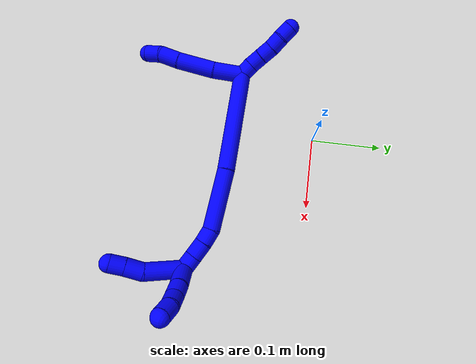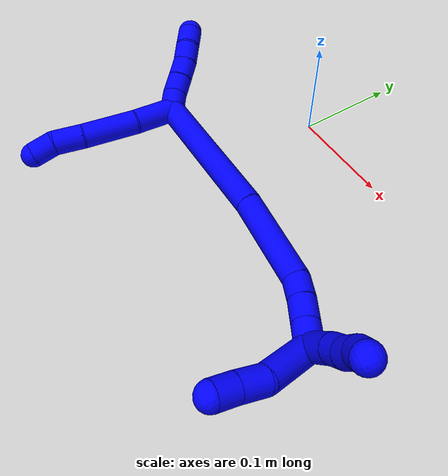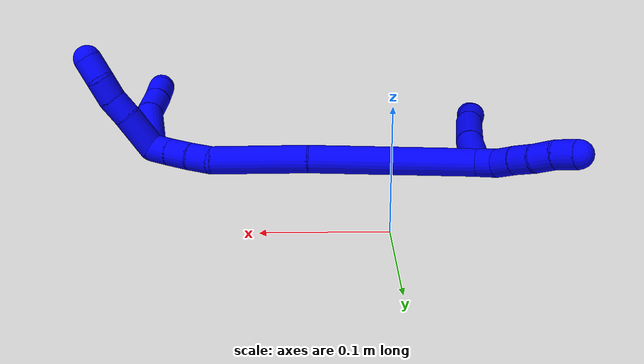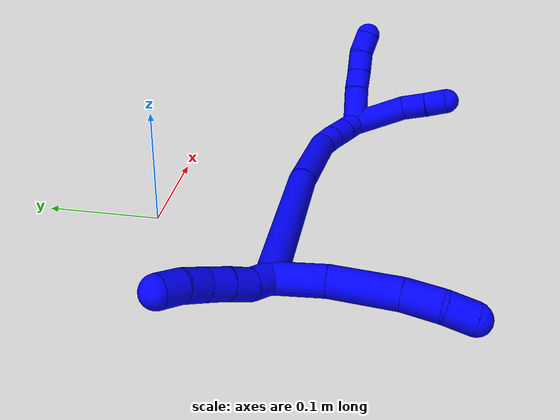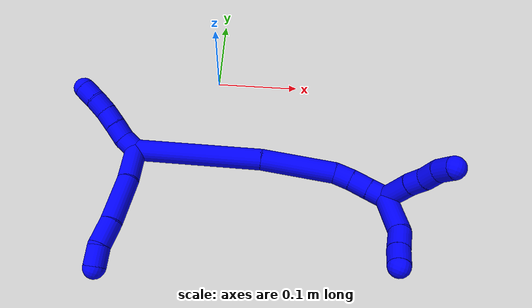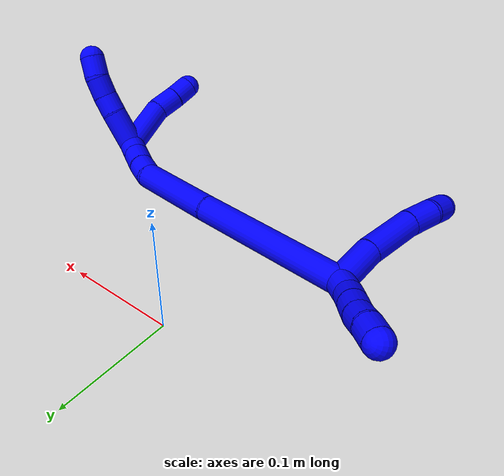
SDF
<sdf version="1.7">
 <world name="default">
  <model name="1">
   <static>0</static>
   <link name="1">
    <collision name="collision-cylinder-e_1_2_8">
     <pose>0.00542 0.011683 0.017354 -0.592518 0.2535 -0.077757</pose>
     <geometry><cylinder><radius>0.0125</radius><length>0.043222</length></cylinder></geometry>
     <surface>
      <friction><ode><mu>1.16</mu><mu2>1.16</mu2><slip1>0</slip1><slip2>0</slip2></ode></friction>
      <contact><ode><kp>1e+06</kp><kd>1</kd><max_vel>0</max_vel><min_depth>0.001</min_depth></ode></contact>
     </surface>
    </collision>
    <visual name="visual-cylinder-e_1_2_8">
     <pose>0.00542 0.011683 0.017354 -0.592518 0.2535 -0.077757</pose>
     <geometry><cylinder><radius>0.0125</radius><length>0.043222</length></cylinder></geometry>
     <material><ambient>0 0 1 1</ambient></material>
    </visual>
    <collision name="collision-cylinder-e_2_8_9">
     <pose>0.01445 0.036912 0.058126 -0.524424 0.132656 -0.035652</pose>
     <geometry><cylinder><radius>0.0125</radius><length>0.054587</length></cylinder></geometry>
     <surface>
      <friction><ode><mu>1.16</mu><mu2>1.16</mu2><slip1>0</slip1><slip2>0</slip2></ode></friction>
      <contact><ode><kp>1e+06</kp><kd>1</kd><max_vel>0</max_vel><min_depth>0.001</min_depth></ode></contact>
     </surface>
    </collision>
    <visual name="visual-cylinder-e_2_8_9">
     <pose>0.01445 0.036912 0.058126 -0.524424 0.132656 -0.035652</pose>
     <geometry><cylinder><radius>0.0125</radius><length>0.054587</length></cylinder></geometry>
     <material><ambient>0 0 1 1</ambient></material>
    </visual>
    <collision name="collision-cylinder-e_3_9_10">
     <pose>0.018479 0.05688 0.094693 -0.454361 0.028614 -0.006615</pose>
     <geometry><cylinder><radius>0.0125</radius><length>0.029278</length></cylinder></geometry>
     <surface>
      <friction><ode><mu>1.16</mu><mu2>1.16</mu2><slip1>0</slip1><slip2>0</slip2></ode></friction>
      <contact><ode><kp>1e+06</kp><kd>1</kd><max_vel>0</max_vel><min_depth>0.001</min_depth></ode></contact>
     </surface>
    </collision>
    <visual name="visual-cylinder-e_3_9_10">
     <pose>0.018479 0.05688 0.094693 -0.454361 0.028614 -0.006615</pose>
     <geometry><cylinder><radius>0.0125</radius><length>0.029278</length></cylinder></geometry>
     <material><ambient>0 0 1 1</ambient></material>
    </visual>
    <collision name="collision-cylinder-e_4_10_6">
     <pose>0.021539 0.065818 0.118701 -0.227586 0.23269 -0.026713</pose>
     <geometry><cylinder><radius>0.0125</radius><length>0.022913</length></cylinder></geometry>
     <surface>
      <friction><ode><mu>1.16</mu><mu2>1.16</mu2><slip1>0</slip1><slip2>0</slip2></ode></friction>
      <contact><ode><kp>1e+06</kp><kd>1</kd><max_vel>0</max_vel><min_depth>0.001</min_depth></ode></contact>
     </surface>
    </collision>
    <visual name="visual-cylinder-e_4_10_6">
     <pose>0.021539 0.065818 0.118701 -0.227586 0.23269 -0.026713</pose>
     <geometry><cylinder><radius>0.0125</radius><length>0.022913</length></cylinder></geometry>
     <material><ambient>0 0 1 1</ambient></material>
    </visual>
    <collision name="collision-cylinder-e_1_2_11">
     <pose>-0.009314 -0.000882 -0.003532 2.89701 -1.19816 -2.7854</pose>
     <geometry><cylinder><radius>0.0125</radius><length>0.02</length></cylinder></geometry>
     <surface>
      <friction><ode><mu>1.16</mu><mu2>1.16</mu2><slip1>0</slip1><slip2>0</slip2></ode></friction>
      <contact><ode><kp>1e+06</kp><kd>1</kd><max_vel>0</max_vel><min_depth>0.001</min_depth></ode></contact>
     </surface>
    </collision>
    <visual name="visual-cylinder-e_1_2_11">
     <pose>-0.009314 -0.000882 -0.003532 2.89701 -1.19816 -2.7854</pose>
     <geometry><cylinder><radius>0.0125</radius><length>0.02</length></cylinder></geometry>
     <material><ambient>0 0 1 1</ambient></material>
    </visual>
    <collision name="collision-cylinder-e_2_11_12">
     <pose>-0.0268 -0.001419 -0.012817 -3.0818 -0.956631 3.02636</pose>
     <geometry><cylinder><radius>0.0125</radius><length>0.02</length></cylinder></geometry>
     <surface>
      <friction><ode><mu>1.16</mu><mu2>1.16</mu2><slip1>0</slip1><slip2>0</slip2></ode></friction>
      <contact><ode><kp>1e+06</kp><kd>1</kd><max_vel>0</max_vel><min_depth>0.001</min_depth></ode></contact>
     </surface>
    </collision>
    <visual name="visual-cylinder-e_2_11_12">
     <pose>-0.0268 -0.001419 -0.012817 -3.0818 -0.956631 3.02636</pose>
     <geometry><cylinder><radius>0.0125</radius><length>0.02</length></cylinder></geometry>
     <material><ambient>0 0 1 1</ambient></material>
    </visual>
    <collision name="collision-cylinder-e_3_12_13">
     <pose>-0.043356 -0.001195 -0.02402 3.11957 -0.994171 -3.101</pose>
     <geometry><cylinder><radius>0.0125</radius><length>0.02</length></cylinder></geometry>
     <surface>
      <friction><ode><mu>1.16</mu><mu2>1.16</mu2><slip1>0</slip1><slip2>0</slip2></ode></friction>
      <contact><ode><kp>1e+06</kp><kd>1</kd><max_vel>0</max_vel><min_depth>0.001</min_depth></ode></contact>
     </surface>
    </collision>
    <visual name="visual-cylinder-e_3_12_13">
     <pose>-0.043356 -0.001195 -0.02402 3.11957 -0.994171 -3.101</pose>
     <geometry><cylinder><radius>0.0125</radius><length>0.02</length></cylinder></geometry>
     <material><ambient>0 0 1 1</ambient></material>
    </visual>
    <collision name="collision-cylinder-e_4_13_14">
     <pose>-0.060546 -0.000452 -0.034128 -2.95847 -1.07742 2.83673</pose>
     <geometry><cylinder><radius>0.0125</radius><length>0.02</length></cylinder></geometry>
     <surface>
      <friction><ode><mu>1.16</mu><mu2>1.16</mu2><slip1>0</slip1><slip2>0</slip2></ode></friction>
      <contact><ode><kp>1e+06</kp><kd>1</kd><max_vel>0</max_vel><min_depth>0.001</min_depth></ode></contact>
     </surface>
    </collision>
    <visual name="visual-cylinder-e_4_13_14">
     <pose>-0.060546 -0.000452 -0.034128 -2.95847 -1.07742 2.83673</pose>
     <geometry><cylinder><radius>0.0125</radius><length>0.02</length></cylinder></geometry>
     <material><ambient>0 0 1 1</ambient></material>
    </visual>
    <collision name="collision-cylinder-e_5_14_5">
     <pose>-0.078529 -0.000149 -0.042722 3.00044 -1.16183 -2.92705</pose>
     <geometry><cylinder><radius>0.0125</radius><length>0.02</length></cylinder></geometry>
     <surface>
      <friction><ode><mu>1.16</mu><mu2>1.16</mu2><slip1>0</slip1><slip2>0</slip2></ode></friction>
      <contact><ode><kp>1e+06</kp><kd>1</kd><max_vel>0</max_vel><min_depth>0.001</min_depth></ode></contact>
     </surface>
    </collision>
    <visual name="visual-cylinder-e_5_14_5">
     <pose>-0.078529 -0.000149 -0.042722 3.00044 -1.16183 -2.92705</pose>
     <geometry><cylinder><radius>0.0125</radius><length>0.02</length></cylinder></geometry>
     <material><ambient>0 0 1 1</ambient></material>
    </visual>
    <collision name="collision-cylinder-e_1_2_15">
     <pose>0.07142 -0.000656 -0.02118 3.11065 1.28236 3.10014</pose>
     <geometry><cylinder><radius>0.0125</radius><length>0.148994</length></cylinder></geometry>
     <surface>
      <friction><ode><mu>1.16</mu><mu2>1.16</mu2><slip1>0</slip1><slip2>0</slip2></ode></friction>
      <contact><ode><kp>1e+06</kp><kd>1</kd><max_vel>0</max_vel><min_depth>0.001</min_depth></ode></contact>
     </surface>
    </collision>
    <visual name="visual-cylinder-e_1_2_15">
     <pose>0.07142 -0.000656 -0.02118 3.11065 1.28236 3.10014</pose>
     <geometry><cylinder><radius>0.0125</radius><length>0.148994</length></cylinder></geometry>
     <material><ambient>0 0 1 1</ambient></material>
    </visual>
    <collision name="collision-cylinder-e_2_15_16">
     <pose>0.185522 -0.002557 -0.050429 2.98841 1.38183 2.95651</pose>
     <geometry><cylinder><radius>0.0125</radius><length>0.086913</length></cylinder></geometry>
     <surface>
      <friction><ode><mu>1.16</mu><mu2>1.16</mu2><slip1>0</slip1><slip2>0</slip2></ode></friction>
      <contact><ode><kp>1e+06</kp><kd>1</kd><max_vel>0</max_vel><min_depth>0.001</min_depth></ode></contact>
     </surface>
    </collision>
    <visual name="visual-cylinder-e_2_15_16">
     <pose>0.185522 -0.002557 -0.050429 2.98841 1.38183 2.95651</pose>
     <geometry><cylinder><radius>0.0125</radius><length>0.086913</length></cylinder></geometry>
     <material><ambient>0 0 1 1</ambient></material>
    </visual>
    <collision name="collision-cylinder-e_3_16_17">
     <pose>0.238445 -0.00196 -0.057978 -1.29642 1.38599 -1.12282</pose>
     <geometry><cylinder><radius>0.0125</radius><length>0.020834</length></cylinder></geometry>
     <surface>
      <friction><ode><mu>1.16</mu><mu2>1.16</mu2><slip1>0</slip1><slip2>0</slip2></ode></friction>
      <contact><ode><kp>1e+06</kp><kd>1</kd><max_vel>0</max_vel><min_depth>0.001</min_depth></ode></contact>
     </surface>
    </collision>
    <visual name="visual-cylinder-e_3_16_17">
     <pose>0.238445 -0.00196 -0.057978 -1.29642 1.38599 -1.12282</pose>
     <geometry><cylinder><radius>0.0125</radius><length>0.020834</length></cylinder></geometry>
     <material><ambient>0 0 1 1</ambient></material>
    </visual>
    <collision name="collision-cylinder-e_4_17_18">
     <pose>0.259496 0.002285 -0.055968 -1.01543 1.31504 -0.811507</pose>
     <geometry><cylinder><radius>0.0125</radius><length>0.02235</length></cylinder></geometry>
     <surface>
      <friction><ode><mu>1.16</mu><mu2>1.16</mu2><slip1>0</slip1><slip2>0</slip2></ode></friction>
      <contact><ode><kp>1e+06</kp><kd>1</kd><max_vel>0</max_vel><min_depth>0.001</min_depth></ode></contact>
     </surface>
    </collision>
    <visual name="visual-cylinder-e_4_17_18">
     <pose>0.259496 0.002285 -0.055968 -1.01543 1.31504 -0.811507</pose>
     <geometry><cylinder><radius>0.0125</radius><length>0.02235</length></cylinder></geometry>
     <material><ambient>0 0 1 1</ambient></material>
    </visual>
    <collision name="collision-cylinder-e_5_18_1">
     <pose>0.280386 0.00713 -0.053153 -1.07379 1.30178 -0.851231</pose>
     <geometry><cylinder><radius>0.0125</radius><length>0.020909</length></cylinder></geometry>
     <surface>
      <friction><ode><mu>1.16</mu><mu2>1.16</mu2><slip1>0</slip1><slip2>0</slip2></ode></friction>
      <contact><ode><kp>1e+06</kp><kd>1</kd><max_vel>0</max_vel><min_depth>0.001</min_depth></ode></contact>
     </surface>
    </collision>
    <visual name="visual-cylinder-e_5_18_1">
     <pose>0.280386 0.00713 -0.053153 -1.07379 1.30178 -0.851231</pose>
     <geometry><cylinder><radius>0.0125</radius><length>0.020909</length></cylinder></geometry>
     <material><ambient>0 0 1 1</ambient></material>
    </visual>
    <collision name="collision-cylinder-e_1_1_19">
     <pose>0.298591 0.022716 -0.062811 -2.26683 0.443016 -0.897685</pose>
     <geometry><cylinder><radius>0.0125</radius><length>0.037918</length></cylinder></geometry>
     <surface>
      <friction><ode><mu>1.16</mu><mu2>1.16</mu2><slip1>0</slip1><slip2>0</slip2></ode></friction>
      <contact><ode><kp>1e+06</kp><kd>1</kd><max_vel>0</max_vel><min_depth>0.001</min_depth></ode></contact>
     </surface>
    </collision>
    <visual name="visual-cylinder-e_1_1_19">
     <pose>0.298591 0.022716 -0.062811 -2.26683 0.443016 -0.897685</pose>
     <geometry><cylinder><radius>0.0125</radius><length>0.037918</length></cylinder></geometry>
     <material><ambient>0 0 1 1</ambient></material>
    </visual>
    <collision name="collision-cylinder-e_2_19_20">
     <pose>0.311978 0.042753 -0.078785 -2.19762 0.553625 -1.01573</pose>
     <geometry><cylinder><radius>0.0125</radius><length>0.020009</length></cylinder></geometry>
     <surface>
      <friction><ode><mu>1.16</mu><mu2>1.16</mu2><slip1>0</slip1><slip2>0</slip2></ode></friction>
      <contact><ode><kp>1e+06</kp><kd>1</kd><max_vel>0</max_vel><min_depth>0.001</min_depth></ode></contact>
     </surface>
    </collision>
    <visual name="visual-cylinder-e_2_19_20">
     <pose>0.311978 0.042753 -0.078785 -2.19762 0.553625 -1.01573</pose>
     <geometry><cylinder><radius>0.0125</radius><length>0.020009</length></cylinder></geometry>
     <material><ambient>0 0 1 1</ambient></material>
    </visual>
    <collision name="collision-cylinder-e_3_20_21">
     <pose>0.320911 0.057768 -0.0893 -2.16789 0.357766 -0.658312</pose>
     <geometry><cylinder><radius>0.0125</radius><length>0.020974</length></cylinder></geometry>
     <surface>
      <friction><ode><mu>1.16</mu><mu2>1.16</mu2><slip1>0</slip1><slip2>0</slip2></ode></friction>
      <contact><ode><kp>1e+06</kp><kd>1</kd><max_vel>0</max_vel><min_depth>0.001</min_depth></ode></contact>
     </surface>
    </collision>
    <visual name="visual-cylinder-e_3_20_21">
     <pose>0.320911 0.057768 -0.0893 -2.16789 0.357766 -0.658312</pose>
     <geometry><cylinder><radius>0.0125</radius><length>0.020974</length></cylinder></geometry>
     <material><ambient>0 0 1 1</ambient></material>
    </visual>
    <collision name="collision-cylinder-e_4_21_4">
     <pose>0.32968 0.074574 -0.097977 -1.91928 0.504208 -0.704608</pose>
     <geometry><cylinder><radius>0.0125</radius><length>0.021099</length></cylinder></geometry>
     <surface>
      <friction><ode><mu>1.16</mu><mu2>1.16</mu2><slip1>0</slip1><slip2>0</slip2></ode></friction>
      <contact><ode><kp>1e+06</kp><kd>1</kd><max_vel>0</max_vel><min_depth>0.001</min_depth></ode></contact>
     </surface>
    </collision>
    <visual name="visual-cylinder-e_4_21_4">
     <pose>0.32968 0.074574 -0.097977 -1.91928 0.504208 -0.704608</pose>
     <geometry><cylinder><radius>0.0125</radius><length>0.021099</length></cylinder></geometry>
     <material><ambient>0 0 1 1</ambient></material>
    </visual>
    <collision name="collision-cylinder-e_1_1_22">
     <pose>0.301086 0.029106 -0.036507 -0.905686 0.40428 -0.198776</pose>
     <geometry><cylinder><radius>0.0125</radius><length>0.054005</length></cylinder></geometry>
     <surface>
      <friction><ode><mu>1.16</mu><mu2>1.16</mu2><slip1>0</slip1><slip2>0</slip2></ode></friction>
      <contact><ode><kp>1e+06</kp><kd>1</kd><max_vel>0</max_vel><min_depth>0.001</min_depth></ode></contact>
     </surface>
    </collision>
    <visual name="visual-cylinder-e_1_1_22">
     <pose>0.301086 0.029106 -0.036507 -0.905686 0.40428 -0.198776</pose>
     <geometry><cylinder><radius>0.0125</radius><length>0.054005</length></cylinder></geometry>
     <material><ambient>0 0 1 1</ambient></material>
    </visual>
    <collision name="collision-cylinder-e_2_22_23">
     <pose>0.312702 0.057508 -0.012315 -0.785206 0.079138 -0.032785</pose>
     <geometry><cylinder><radius>0.0125</radius><length>0.025164</length></cylinder></geometry>
     <surface>
      <friction><ode><mu>1.16</mu><mu2>1.16</mu2><slip1>0</slip1><slip2>0</slip2></ode></friction>
      <contact><ode><kp>1e+06</kp><kd>1</kd><max_vel>0</max_vel><min_depth>0.001</min_depth></ode></contact>
     </surface>
    </collision>
    <visual name="visual-cylinder-e_2_22_23">
     <pose>0.312702 0.057508 -0.012315 -0.785206 0.079138 -0.032785</pose>
     <geometry><cylinder><radius>0.0125</radius><length>0.025164</length></cylinder></geometry>
     <material><ambient>0 0 1 1</ambient></material>
    </visual>
    <collision name="collision-cylinder-e_3_23_3">
     <pose>0.315202 0.073874 0.003625 -0.814915 0.14502 -0.062682</pose>
     <geometry><cylinder><radius>0.0125</radius><length>0.020831</length></cylinder></geometry>
     <surface>
      <friction><ode><mu>1.16</mu><mu2>1.16</mu2><slip1>0</slip1><slip2>0</slip2></ode></friction>
      <contact><ode><kp>1e+06</kp><kd>1</kd><max_vel>0</max_vel><min_depth>0.001</min_depth></ode></contact>
     </surface>
    </collision>
    <visual name="visual-cylinder-e_3_23_3">
     <pose>0.315202 0.073874 0.003625 -0.814915 0.14502 -0.062682</pose>
     <geometry><cylinder><radius>0.0125</radius><length>0.020831</length></cylinder></geometry>
     <material><ambient>0 0 1 1</ambient></material>
    </visual>
    <collision name="collision-sphere-3">
     <pose>0.316707 0.081374 0.010694 0 -0 0</pose>
     <geometry><sphere><radius>0.0125</radius></sphere></geometry>
     <surface>
      <friction><ode><mu>1.16</mu><mu2>1.16</mu2><slip1>0</slip1><slip2>0</slip2></ode></friction>
      <contact><ode><kp>1e+06</kp><kd>1</kd><max_vel>0</max_vel><min_depth>0.001</min_depth></ode></contact>
     </surface>
    </collision>
    <visual name="visual-sphere-3">
     <pose>0.316707 0.081374 0.010694 0 -0 0</pose>
     <geometry><sphere><radius>0.0125</radius></sphere></geometry>
     <material><ambient>0 0 1 1</ambient></material>
    </visual>
    <collision name="collision-sphere-23">
     <pose>0.313697 0.066375 -0.003445 0 -0 0</pose>
     <geometry><sphere><radius>0.0125</radius></sphere></geometry>
     <surface>
      <friction><ode><mu>1.16</mu><mu2>1.16</mu2><slip1>0</slip1><slip2>0</slip2></ode></friction>
      <contact><ode><kp>1e+06</kp><kd>1</kd><max_vel>0</max_vel><min_depth>0.001</min_depth></ode></contact>
     </surface>
    </collision>
    <visual name="visual-sphere-23">
     <pose>0.313697 0.066375 -0.003445 0 -0 0</pose>
     <geometry><sphere><radius>0.0125</radius></sphere></geometry>
     <material><ambient>0 0 1 1</ambient></material>
    </visual>
    <collision name="collision-sphere-22">
     <pose>0.311708 0.04864 -0.021186 0 -0 0</pose>
     <geometry><sphere><radius>0.0125</radius></sphere></geometry>
     <surface>
      <friction><ode><mu>1.16</mu><mu2>1.16</mu2><slip1>0</slip1><slip2>0</slip2></ode></friction>
      <contact><ode><kp>1e+06</kp><kd>1</kd><max_vel>0</max_vel><min_depth>0.001</min_depth></ode></contact>
     </surface>
    </collision>
    <visual name="visual-sphere-22">
     <pose>0.311708 0.04864 -0.021186 0 -0 0</pose>
     <geometry><sphere><radius>0.0125</radius></sphere></geometry>
     <material><ambient>0 0 1 1</ambient></material>
    </visual>
    <collision name="collision-sphere-4">
     <pose>0.334777 0.083255 -0.101131 0 -0 0</pose>
     <geometry><sphere><radius>0.0125</radius></sphere></geometry>
     <surface>
      <friction><ode><mu>1.16</mu><mu2>1.16</mu2><slip1>0</slip1><slip2>0</slip2></ode></friction>
      <contact><ode><kp>1e+06</kp><kd>1</kd><max_vel>0</max_vel><min_depth>0.001</min_depth></ode></contact>
     </surface>
    </collision>
    <visual name="visual-sphere-4">
     <pose>0.334777 0.083255 -0.101131 0 -0 0</pose>
     <geometry><sphere><radius>0.0125</radius></sphere></geometry>
     <material><ambient>0 0 1 1</ambient></material>
    </visual>
    <collision name="collision-sphere-21">
     <pose>0.324583 0.065892 -0.094823 0 -0 0</pose>
     <geometry><sphere><radius>0.0125</radius></sphere></geometry>
     <surface>
      <friction><ode><mu>1.16</mu><mu2>1.16</mu2><slip1>0</slip1><slip2>0</slip2></ode></friction>
      <contact><ode><kp>1e+06</kp><kd>1</kd><max_vel>0</max_vel><min_depth>0.001</min_depth></ode></contact>
     </surface>
    </collision>
    <visual name="visual-sphere-21">
     <pose>0.324583 0.065892 -0.094823 0 -0 0</pose>
     <geometry><sphere><radius>0.0125</radius></sphere></geometry>
     <material><ambient>0 0 1 1</ambient></material>
    </visual>
    <collision name="collision-sphere-20">
     <pose>0.317238 0.049645 -0.083777 0 -0 0</pose>
     <geometry><sphere><radius>0.0125</radius></sphere></geometry>
     <surface>
      <friction><ode><mu>1.16</mu><mu2>1.16</mu2><slip1>0</slip1><slip2>0</slip2></ode></friction>
      <contact><ode><kp>1e+06</kp><kd>1</kd><max_vel>0</max_vel><min_depth>0.001</min_depth></ode></contact>
     </surface>
    </collision>
    <visual name="visual-sphere-20">
     <pose>0.317238 0.049645 -0.083777 0 -0 0</pose>
     <geometry><sphere><radius>0.0125</radius></sphere></geometry>
     <material><ambient>0 0 1 1</ambient></material>
    </visual>
    <collision name="collision-sphere-11">
     <pose>-0.018627 -0.001763 -0.007065 0 -0 0</pose>
     <geometry><sphere><radius>0.0125</radius></sphere></geometry>
     <surface>
      <friction><ode><mu>1.16</mu><mu2>1.16</mu2><slip1>0</slip1><slip2>0</slip2></ode></friction>
      <contact><ode><kp>1e+06</kp><kd>1</kd><max_vel>0</max_vel><min_depth>0.001</min_depth></ode></contact>
     </surface>
    </collision>
    <visual name="visual-sphere-11">
     <pose>-0.018627 -0.001763 -0.007065 0 -0 0</pose>
     <geometry><sphere><radius>0.0125</radius></sphere></geometry>
     <material><ambient>0 0 1 1</ambient></material>
    </visual>
    <collision name="collision-sphere-6">
     <pose>0.024181 0.068333 0.129562 0 -0 0</pose>
     <geometry><sphere><radius>0.0125</radius></sphere></geometry>
     <surface>
      <friction><ode><mu>1.16</mu><mu2>1.16</mu2><slip1>0</slip1><slip2>0</slip2></ode></friction>
      <contact><ode><kp>1e+06</kp><kd>1</kd><max_vel>0</max_vel><min_depth>0.001</min_depth></ode></contact>
     </surface>
    </collision>
    <visual name="visual-sphere-6">
     <pose>0.024181 0.068333 0.129562 0 -0 0</pose>
     <geometry><sphere><radius>0.0125</radius></sphere></geometry>
     <material><ambient>0 0 1 1</ambient></material>
    </visual>
    <collision name="collision-sphere-10">
     <pose>0.018897 0.063303 0.107841 0 -0 0</pose>
     <geometry><sphere><radius>0.0125</radius></sphere></geometry>
     <surface>
      <friction><ode><mu>1.16</mu><mu2>1.16</mu2><slip1>0</slip1><slip2>0</slip2></ode></friction>
      <contact><ode><kp>1e+06</kp><kd>1</kd><max_vel>0</max_vel><min_depth>0.001</min_depth></ode></contact>
     </surface>
    </collision>
    <visual name="visual-sphere-10">
     <pose>0.018897 0.063303 0.107841 0 -0 0</pose>
     <geometry><sphere><radius>0.0125</radius></sphere></geometry>
     <material><ambient>0 0 1 1</ambient></material>
    </visual>
    <collision name="collision-sphere-9">
     <pose>0.01806 0.050458 0.081544 0 -0 0</pose>
     <geometry><sphere><radius>0.0125</radius></sphere></geometry>
     <surface>
      <friction><ode><mu>1.16</mu><mu2>1.16</mu2><slip1>0</slip1><slip2>0</slip2></ode></friction>
      <contact><ode><kp>1e+06</kp><kd>1</kd><max_vel>0</max_vel><min_depth>0.001</min_depth></ode></contact>
     </surface>
    </collision>
    <visual name="visual-sphere-9">
     <pose>0.01806 0.050458 0.081544 0 -0 0</pose>
     <geometry><sphere><radius>0.0125</radius></sphere></geometry>
     <material><ambient>0 0 1 1</ambient></material>
    </visual>
    <collision name="collision-sphere-2">
     <geometry><sphere><radius>0.0125</radius></sphere></geometry>
     <surface>
      <friction><ode><mu>1.16</mu><mu2>1.16</mu2><slip1>0</slip1><slip2>0</slip2></ode></friction>
      <contact><ode><kp>1e+06</kp><kd>1</kd><max_vel>0</max_vel><min_depth>0.001</min_depth></ode></contact>
     </surface>
    </collision>
    <visual name="visual-sphere-2">
     <geometry><sphere><radius>0.0125</radius></sphere></geometry>
     <material><ambient>0 0 1 1</ambient></material>
    </visual>
    <collision name="collision-sphere-19">
     <pose>0.306718 0.035861 -0.073793 0 -0 0</pose>
     <geometry><sphere><radius>0.0125</radius></sphere></geometry>
     <surface>
      <friction><ode><mu>1.16</mu><mu2>1.16</mu2><slip1>0</slip1><slip2>0</slip2></ode></friction>
      <contact><ode><kp>1e+06</kp><kd>1</kd><max_vel>0</max_vel><min_depth>0.001</min_depth></ode></contact>
     </surface>
    </collision>
    <visual name="visual-sphere-19">
     <pose>0.306718 0.035861 -0.073793 0 -0 0</pose>
     <geometry><sphere><radius>0.0125</radius></sphere></geometry>
     <material><ambient>0 0 1 1</ambient></material>
    </visual>
    <collision name="collision-sphere-8">
     <pose>0.01084 0.023366 0.034708 0 -0 0</pose>
     <geometry><sphere><radius>0.0125</radius></sphere></geometry>
     <surface>
      <friction><ode><mu>1.16</mu><mu2>1.16</mu2><slip1>0</slip1><slip2>0</slip2></ode></friction>
      <contact><ode><kp>1e+06</kp><kd>1</kd><max_vel>0</max_vel><min_depth>0.001</min_depth></ode></contact>
     </surface>
    </collision>
    <visual name="visual-sphere-8">
     <pose>0.01084 0.023366 0.034708 0 -0 0</pose>
     <geometry><sphere><radius>0.0125</radius></sphere></geometry>
     <material><ambient>0 0 1 1</ambient></material>
    </visual>
    <collision name="collision-sphere-12">
     <pose>-0.034973 -0.001074 -0.01857 0 -0 0</pose>
     <geometry><sphere><radius>0.0125</radius></sphere></geometry>
     <surface>
      <friction><ode><mu>1.16</mu><mu2>1.16</mu2><slip1>0</slip1><slip2>0</slip2></ode></friction>
      <contact><ode><kp>1e+06</kp><kd>1</kd><max_vel>0</max_vel><min_depth>0.001</min_depth></ode></contact>
     </surface>
    </collision>
    <visual name="visual-sphere-12">
     <pose>-0.034973 -0.001074 -0.01857 0 -0 0</pose>
     <geometry><sphere><radius>0.0125</radius></sphere></geometry>
     <material><ambient>0 0 1 1</ambient></material>
    </visual>
    <collision name="collision-sphere-13">
     <pose>-0.051739 -0.001315 -0.029471 0 -0 0</pose>
     <geometry><sphere><radius>0.0125</radius></sphere></geometry>
     <surface>
      <friction><ode><mu>1.16</mu><mu2>1.16</mu2><slip1>0</slip1><slip2>0</slip2></ode></friction>
      <contact><ode><kp>1e+06</kp><kd>1</kd><max_vel>0</max_vel><min_depth>0.001</min_depth></ode></contact>
     </surface>
    </collision>
    <visual name="visual-sphere-13">
     <pose>-0.051739 -0.001315 -0.029471 0 -0 0</pose>
     <geometry><sphere><radius>0.0125</radius></sphere></geometry>
     <material><ambient>0 0 1 1</ambient></material>
    </visual>
    <collision name="collision-sphere-14">
     <pose>-0.069353 0.00041 -0.038785 0 -0 0</pose>
     <geometry><sphere><radius>0.0125</radius></sphere></geometry>
     <surface>
      <friction><ode><mu>1.16</mu><mu2>1.16</mu2><slip1>0</slip1><slip2>0</slip2></ode></friction>
      <contact><ode><kp>1e+06</kp><kd>1</kd><max_vel>0</max_vel><min_depth>0.001</min_depth></ode></contact>
     </surface>
    </collision>
    <visual name="visual-sphere-14">
     <pose>-0.069353 0.00041 -0.038785 0 -0 0</pose>
     <geometry><sphere><radius>0.0125</radius></sphere></geometry>
     <material><ambient>0 0 1 1</ambient></material>
    </visual>
    <collision name="collision-sphere-5">
     <pose>-0.087704 -0.000709 -0.046659 0 -0 0</pose>
     <geometry><sphere><radius>0.0125</radius></sphere></geometry>
     <surface>
      <friction><ode><mu>1.16</mu><mu2>1.16</mu2><slip1>0</slip1><slip2>0</slip2></ode></friction>
      <contact><ode><kp>1e+06</kp><kd>1</kd><max_vel>0</max_vel><min_depth>0.001</min_depth></ode></contact>
     </surface>
    </collision>
    <visual name="visual-sphere-5">
     <pose>-0.087704 -0.000709 -0.046659 0 -0 0</pose>
     <geometry><sphere><radius>0.0125</radius></sphere></geometry>
     <material><ambient>0 0 1 1</ambient></material>
    </visual>
    <collision name="collision-sphere-15">
     <pose>0.142839 -0.001311 -0.042361 0 -0 0</pose>
     <geometry><sphere><radius>0.0125</radius></sphere></geometry>
     <surface>
      <friction><ode><mu>1.16</mu><mu2>1.16</mu2><slip1>0</slip1><slip2>0</slip2></ode></friction>
      <contact><ode><kp>1e+06</kp><kd>1</kd><max_vel>0</max_vel><min_depth>0.001</min_depth></ode></contact>
     </surface>
    </collision>
    <visual name="visual-sphere-15">
     <pose>0.142839 -0.001311 -0.042361 0 -0 0</pose>
     <geometry><sphere><radius>0.0125</radius></sphere></geometry>
     <material><ambient>0 0 1 1</ambient></material>
    </visual>
    <collision name="collision-sphere-16">
     <pose>0.228205 -0.003802 -0.058496 0 -0 0</pose>
     <geometry><sphere><radius>0.0125</radius></sphere></geometry>
     <surface>
      <friction><ode><mu>1.16</mu><mu2>1.16</mu2><slip1>0</slip1><slip2>0</slip2></ode></friction>
      <contact><ode><kp>1e+06</kp><kd>1</kd><max_vel>0</max_vel><min_depth>0.001</min_depth></ode></contact>
     </surface>
    </collision>
    <visual name="visual-sphere-16">
     <pose>0.228205 -0.003802 -0.058496 0 -0 0</pose>
     <geometry><sphere><radius>0.0125</radius></sphere></geometry>
     <material><ambient>0 0 1 1</ambient></material>
    </visual>
    <collision name="collision-sphere-17">
     <pose>0.248685 -0.000117 -0.057459 0 -0 0</pose>
     <geometry><sphere><radius>0.0125</radius></sphere></geometry>
     <surface>
      <friction><ode><mu>1.16</mu><mu2>1.16</mu2><slip1>0</slip1><slip2>0</slip2></ode></friction>
      <contact><ode><kp>1e+06</kp><kd>1</kd><max_vel>0</max_vel><min_depth>0.001</min_depth></ode></contact>
     </surface>
    </collision>
    <visual name="visual-sphere-17">
     <pose>0.248685 -0.000117 -0.057459 0 -0 0</pose>
     <geometry><sphere><radius>0.0125</radius></sphere></geometry>
     <material><ambient>0 0 1 1</ambient></material>
    </visual>
    <collision name="collision-sphere-18">
     <pose>0.270308 0.004687 -0.054478 0 -0 0</pose>
     <geometry><sphere><radius>0.0125</radius></sphere></geometry>
     <surface>
      <friction><ode><mu>1.16</mu><mu2>1.16</mu2><slip1>0</slip1><slip2>0</slip2></ode></friction>
      <contact><ode><kp>1e+06</kp><kd>1</kd><max_vel>0</max_vel><min_depth>0.001</min_depth></ode></contact>
     </surface>
    </collision>
    <visual name="visual-sphere-18">
     <pose>0.270308 0.004687 -0.054478 0 -0 0</pose>
     <geometry><sphere><radius>0.0125</radius></sphere></geometry>
     <material><ambient>0 0 1 1</ambient></material>
    </visual>
    <collision name="collision-sphere-1">
     <pose>0.290464 0.009572 -0.051828 0 -0 0</pose>
     <geometry><sphere><radius>0.0125</radius></sphere></geometry>
     <surface>
      <friction><ode><mu>1.16</mu><mu2>1.16</mu2><slip1>0</slip1><slip2>0</slip2></ode></friction>
      <contact><ode><kp>1e+06</kp><kd>1</kd><max_vel>0</max_vel><min_depth>0.001</min_depth></ode></contact>
     </surface>
    </collision>
    <visual name="visual-sphere-1">
     <pose>0.290464 0.009572 -0.051828 0 -0 0</pose>
     <geometry><sphere><radius>0.0125</radius></sphere></geometry>
     <material><ambient>0 0 1 1</ambient></material>
    </visual>
    <inertial>
     <pose>0.137371 0.019347 -0.018856 0 -0 0</pose>
     <mass>0.75</mass>
     <inertia>
      <ixx>-2.4e-05</ixx>
      <ixy>0</ixy>
      <ixz>0</ixz>
      <iyy>0.000399</iyy>
      <iyz>0</iyz>
      <izz>-0.00037</izz>
     </inertia>
    </inertial>
   </link>
   <pose>-0.087062 -0.115092 0.013547 2.05062 0.110208 -0.291021</pose>
  </model>
 </world>
</sdf>
